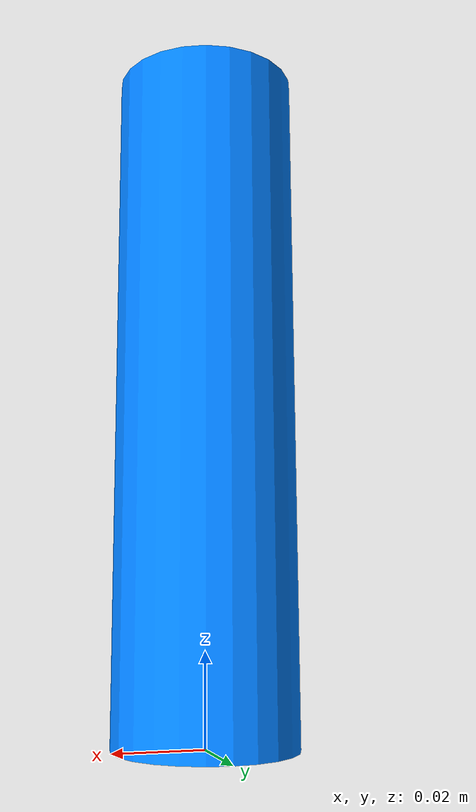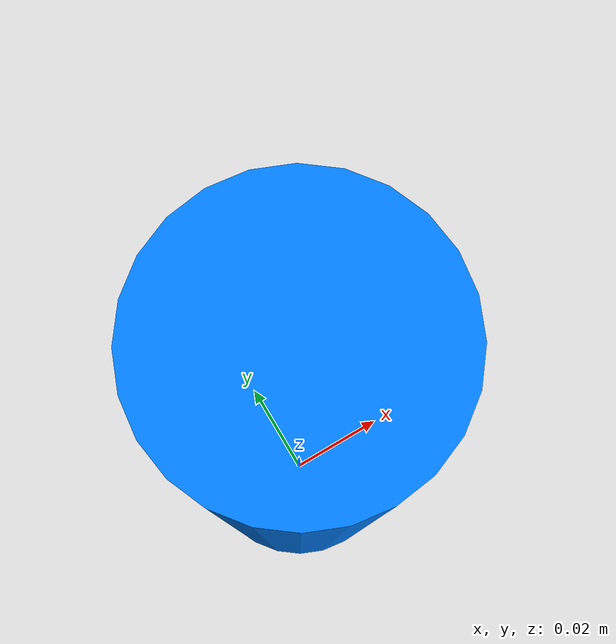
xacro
<?xml version="1.0"?>
<robot xmlns:xacro="http://wiki.ros.org/xacro" name="my_tool">

  <!-- 定义工具的材质（亮蓝色，方便区分） -->
  <material name="tool_blue">
    <color rgba="0.0 0.5 1.0 1.0"/>
  </material>

  <!-- 定义工具 Link -->
  <link name="end_effector_tool">
    <inertial>
      <origin xyz="0 0 0.075" rpy="0 0 0"/>
      <mass value="0.5"/>
      <inertia ixx="0.001" ixy="0" ixz="0" iyy="0.001" iyz="0" izz="0.001"/>
    </inertial>
    <visual>
      <origin xyz="0 0 0.075" rpy="0 0 0"/>
      <geometry>
        <cylinder radius="0.02" length="0.15"/>
      </geometry>
      <material name="tool_blue"/>
    </visual>
    <collision>
      <origin xyz="0 0 0.075" rpy="0 0 0"/>
      <geometry>
        <cylinder radius="0.02" length="0.15"/>
      </geometry>
    </collision>
  </link>

  <!-- 增加一个工具尖端坐标系 (TCP)，方便以后计算拆卸位置 -->
  <link name="tool_tip"/>
  <joint name="tool_to_tip" type="fixed">
    <parent link="end_effector_tool"/>
    <child link="tool_tip"/>
    <origin xyz="0 0 0.15" rpy="0 0 0"/>
  </joint>

</robot>
